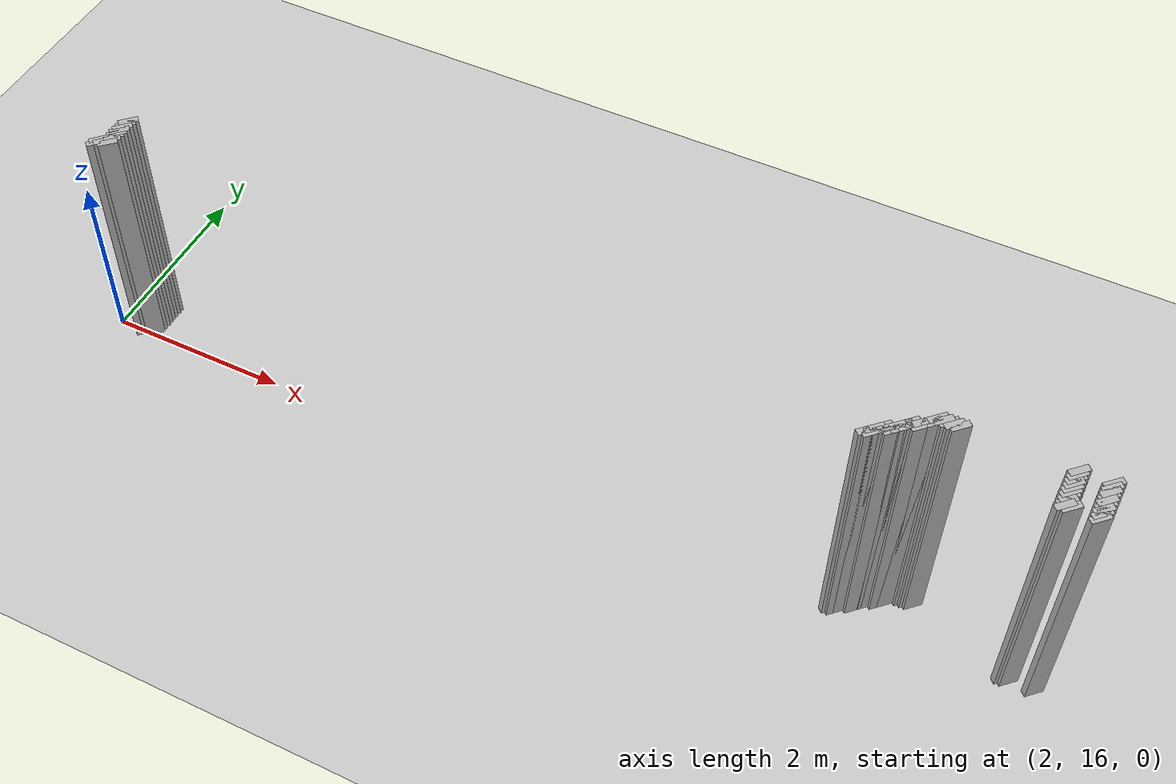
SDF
<sdf version="1.5">
 <world name="default">
  <include><uri>model://ground_plane</uri></include>
  <include><uri>model://sun</uri></include>
  <model name="grey_wall_319">
   <static>1</static>
   <link name="link">
    <pose>10.850000000000001 16.45  1.4 0 0 -0.7853981633974128</pose>
    <collision name="collision">
     <geometry><box><size>0.07071067811865325 .2  2.8</size></box></geometry>
    </collision>
    <visual name="visual">
     <cast_shadows>0</cast_shadows>
     <geometry><box><size>0.07071067811865325 .2  2.8</size></box></geometry>
    </visual>
   </link>
  </model>
  <model name="grey_wall_320">
   <static>1</static>
   <link name="link">
    <pose>10.9 16.45  1.4 0 0 -0.7853981633974128</pose>
    <collision name="collision">
     <geometry><box><size>0.07071067811865325 .2  2.8</size></box></geometry>
    </collision>
    <visual name="visual">
     <cast_shadows>0</cast_shadows>
     <geometry><box><size>0.07071067811865325 .2  2.8</size></box></geometry>
    </visual>
   </link>
  </model>
  <model name="grey_wall_321">
   <static>1</static>
   <link name="link">
    <pose>10.950000000000001 16.45  1.4 0 0 -0.7853981633974128</pose>
    <collision name="collision">
     <geometry><box><size>0.07071067811865325 .2  2.8</size></box></geometry>
    </collision>
    <visual name="visual">
     <cast_shadows>0</cast_shadows>
     <geometry><box><size>0.07071067811865325 .2  2.8</size></box></geometry>
    </visual>
   </link>
  </model>
  <model name="grey_wall_322">
   <static>1</static>
   <link name="link">
    <pose>11.0 16.45  1.4 0 0 -0.7853981633974128</pose>
    <collision name="collision">
     <geometry><box><size>0.07071067811865325 .2  2.8</size></box></geometry>
    </collision>
    <visual name="visual">
     <cast_shadows>0</cast_shadows>
     <geometry><box><size>0.07071067811865325 .2  2.8</size></box></geometry>
    </visual>
   </link>
  </model>
  <model name="grey_wall_323">
   <static>1</static>
   <link name="link">
    <pose>11.05 16.45  1.4 0 0 -0.7853981633974128</pose>
    <collision name="collision">
     <geometry><box><size>0.07071067811865325 .2  2.8</size></box></geometry>
    </collision>
    <visual name="visual">
     <cast_shadows>0</cast_shadows>
     <geometry><box><size>0.07071067811865325 .2  2.8</size></box></geometry>
    </visual>
   </link>
  </model>
  <model name="grey_wall_324">
   <static>1</static>
   <link name="link">
    <pose>12.100000000000001 16.45  1.4 0 0 -0.7853981633974128</pose>
    <collision name="collision">
     <geometry><box><size>0.07071067811865325 .2  2.8</size></box></geometry>
    </collision>
    <visual name="visual">
     <cast_shadows>0</cast_shadows>
     <geometry><box><size>0.07071067811865325 .2  2.8</size></box></geometry>
    </visual>
   </link>
  </model>
  <model name="grey_wall_325">
   <static>1</static>
   <link name="link">
    <pose>12.4 16.45  1.4 0 0 -0.7853981633974128</pose>
    <collision name="collision">
     <geometry><box><size>0.07071067811865325 .2  2.8</size></box></geometry>
    </collision>
    <visual name="visual">
     <cast_shadows>0</cast_shadows>
     <geometry><box><size>0.07071067811865325 .2  2.8</size></box></geometry>
    </visual>
   </link>
  </model>
  <model name="grey_wall_326">
   <static>1</static>
   <link name="link">
    <pose>2.4000000000000004 16.400000000000002  1.4 0 0 -0.7853981633974216</pose>
    <collision name="collision">
     <geometry><box><size>0.07071067811865261 .2  2.8</size></box></geometry>
    </collision>
    <visual name="visual">
     <cast_shadows>0</cast_shadows>
     <geometry><box><size>0.07071067811865261 .2  2.8</size></box></geometry>
    </visual>
   </link>
  </model>
  <model name="grey_wall_327">
   <static>1</static>
   <link name="link">
    <pose>10.8 16.400000000000002  1.4 0 0 -0.7853981633974128</pose>
    <collision name="collision">
     <geometry><box><size>0.07071067811865325 .2  2.8</size></box></geometry>
    </collision>
    <visual name="visual">
     <cast_shadows>0</cast_shadows>
     <geometry><box><size>0.07071067811865325 .2  2.8</size></box></geometry>
    </visual>
   </link>
  </model>
  <model name="grey_wall_328">
   <static>1</static>
   <link name="link">
    <pose>10.850000000000001 16.400000000000002  1.4 0 0 -0.7853981633974128</pose>
    <collision name="collision">
     <geometry><box><size>0.07071067811865325 .2  2.8</size></box></geometry>
    </collision>
    <visual name="visual">
     <cast_shadows>0</cast_shadows>
     <geometry><box><size>0.07071067811865325 .2  2.8</size></box></geometry>
    </visual>
   </link>
  </model>
  <model name="grey_wall_329">
   <static>1</static>
   <link name="link">
    <pose>12.100000000000001 16.400000000000002  1.4 0 0 -0.7853981633974128</pose>
    <collision name="collision">
     <geometry><box><size>0.07071067811865325 .2  2.8</size></box></geometry>
    </collision>
    <visual name="visual">
     <cast_shadows>0</cast_shadows>
     <geometry><box><size>0.07071067811865325 .2  2.8</size></box></geometry>
    </visual>
   </link>
  </model>
  <model name="grey_wall_330">
   <static>1</static>
   <link name="link">
    <pose>12.4 16.400000000000002  1.4 0 0 -0.7853981633974128</pose>
    <collision name="collision">
     <geometry><box><size>0.07071067811865325 .2  2.8</size></box></geometry>
    </collision>
    <visual name="visual">
     <cast_shadows>0</cast_shadows>
     <geometry><box><size>0.07071067811865325 .2  2.8</size></box></geometry>
    </visual>
   </link>
  </model>
  <model name="grey_wall_331">
   <static>1</static>
   <link name="link">
    <pose>2.4000000000000004 16.35  1.4 0 0 -0.7853981633974216</pose>
    <collision name="collision">
     <geometry><box><size>0.07071067811865261 .2  2.8</size></box></geometry>
    </collision>
    <visual name="visual">
     <cast_shadows>0</cast_shadows>
     <geometry><box><size>0.07071067811865261 .2  2.8</size></box></geometry>
    </visual>
   </link>
  </model>
  <model name="grey_wall_332">
   <static>1</static>
   <link name="link">
    <pose>10.75 16.35  1.4 0 0 -0.7853981633974128</pose>
    <collision name="collision">
     <geometry><box><size>0.07071067811865325 .2  2.8</size></box></geometry>
    </collision>
    <visual name="visual">
     <cast_shadows>0</cast_shadows>
     <geometry><box><size>0.07071067811865325 .2  2.8</size></box></geometry>
    </visual>
   </link>
  </model>
  <model name="grey_wall_333">
   <static>1</static>
   <link name="link">
    <pose>10.8 16.35  1.4 0 0 -0.7853981633974128</pose>
    <collision name="collision">
     <geometry><box><size>0.07071067811865325 .2  2.8</size></box></geometry>
    </collision>
    <visual name="visual">
     <cast_shadows>0</cast_shadows>
     <geometry><box><size>0.07071067811865325 .2  2.8</size></box></geometry>
    </visual>
   </link>
  </model>
  <model name="grey_wall_334">
   <static>1</static>
   <link name="link">
    <pose>12.100000000000001 16.35  1.4 0 0 -0.7853981633974128</pose>
    <collision name="collision">
     <geometry><box><size>0.07071067811865325 .2  2.8</size></box></geometry>
    </collision>
    <visual name="visual">
     <cast_shadows>0</cast_shadows>
     <geometry><box><size>0.07071067811865325 .2  2.8</size></box></geometry>
    </visual>
   </link>
  </model>
  <model name="grey_wall_335">
   <static>1</static>
   <link name="link">
    <pose>12.4 16.35  1.4 0 0 -0.7853981633974128</pose>
    <collision name="collision">
     <geometry><box><size>0.07071067811865325 .2  2.8</size></box></geometry>
    </collision>
    <visual name="visual">
     <cast_shadows>0</cast_shadows>
     <geometry><box><size>0.07071067811865325 .2  2.8</size></box></geometry>
    </visual>
   </link>
  </model>
  <model name="grey_wall_336">
   <static>1</static>
   <link name="link">
    <pose>2.4000000000000004 16.3  1.4 0 0 -0.7853981633974216</pose>
    <collision name="collision">
     <geometry><box><size>0.07071067811865261 .2  2.8</size></box></geometry>
    </collision>
    <visual name="visual">
     <cast_shadows>0</cast_shadows>
     <geometry><box><size>0.07071067811865261 .2  2.8</size></box></geometry>
    </visual>
   </link>
  </model>
  <model name="grey_wall_337">
   <static>1</static>
   <link name="link">
    <pose>10.65 16.3  1.4 0 0 -0.7853981633974128</pose>
    <collision name="collision">
     <geometry><box><size>0.07071067811865325 .2  2.8</size></box></geometry>
    </collision>
    <visual name="visual">
     <cast_shadows>0</cast_shadows>
     <geometry><box><size>0.07071067811865325 .2  2.8</size></box></geometry>
    </visual>
   </link>
  </model>
  <model name="grey_wall_338">
   <static>1</static>
   <link name="link">
    <pose>10.700000000000001 16.3  1.4 0 0 -0.7853981633974128</pose>
    <collision name="collision">
     <geometry><box><size>0.07071067811865325 .2  2.8</size></box></geometry>
    </collision>
    <visual name="visual">
     <cast_shadows>0</cast_shadows>
     <geometry><box><size>0.07071067811865325 .2  2.8</size></box></geometry>
    </visual>
   </link>
  </model>
  <model name="grey_wall_339">
   <static>1</static>
   <link name="link">
    <pose>10.75 16.3  1.4 0 0 -0.7853981633974128</pose>
    <collision name="collision">
     <geometry><box><size>0.07071067811865325 .2  2.8</size></box></geometry>
    </collision>
    <visual name="visual">
     <cast_shadows>0</cast_shadows>
     <geometry><box><size>0.07071067811865325 .2  2.8</size></box></geometry>
    </visual>
   </link>
  </model>
  <model name="grey_wall_340">
   <static>1</static>
   <link name="link">
    <pose>12.100000000000001 16.3  1.4 0 0 -0.7853981633974128</pose>
    <collision name="collision">
     <geometry><box><size>0.07071067811865325 .2  2.8</size></box></geometry>
    </collision>
    <visual name="visual">
     <cast_shadows>0</cast_shadows>
     <geometry><box><size>0.07071067811865325 .2  2.8</size></box></geometry>
    </visual>
   </link>
  </model>
  <model name="grey_wall_341">
   <static>1</static>
   <link name="link">
    <pose>12.4 16.3  1.4 0 0 -0.7853981633974128</pose>
    <collision name="collision">
     <geometry><box><size>0.07071067811865325 .2  2.8</size></box></geometry>
    </collision>
    <visual name="visual">
     <cast_shadows>0</cast_shadows>
     <geometry><box><size>0.07071067811865325 .2  2.8</size></box></geometry>
    </visual>
   </link>
  </model>
  <model name="grey_wall_342">
   <static>1</static>
   <link name="link">
    <pose>2.4000000000000004 16.25  1.4 0 0 -0.7853981633974216</pose>
    <collision name="collision">
     <geometry><box><size>0.07071067811865261 .2  2.8</size></box></geometry>
    </collision>
    <visual name="visual">
     <cast_shadows>0</cast_shadows>
     <geometry><box><size>0.07071067811865261 .2  2.8</size></box></geometry>
    </visual>
   </link>
  </model>
  <model name="grey_wall_343">
   <static>1</static>
   <link name="link">
    <pose>10.600000000000001 16.25  1.4 0 0 -0.7853981633974128</pose>
    <collision name="collision">
     <geometry><box><size>0.07071067811865325 .2  2.8</size></box></geometry>
    </collision>
    <visual name="visual">
     <cast_shadows>0</cast_shadows>
     <geometry><box><size>0.07071067811865325 .2  2.8</size></box></geometry>
    </visual>
   </link>
  </model>
  <model name="grey_wall_344">
   <static>1</static>
   <link name="link">
    <pose>10.65 16.25  1.4 0 0 -0.7853981633974128</pose>
    <collision name="collision">
     <geometry><box><size>0.07071067811865325 .2  2.8</size></box></geometry>
    </collision>
    <visual name="visual">
     <cast_shadows>0</cast_shadows>
     <geometry><box><size>0.07071067811865325 .2  2.8</size></box></geometry>
    </visual>
   </link>
  </model>
  <model name="grey_wall_345">
   <static>1</static>
   <link name="link">
    <pose>12.100000000000001 16.25  1.4 0 0 -0.7853981633974128</pose>
    <collision name="collision">
     <geometry><box><size>0.07071067811865325 .2  2.8</size></box></geometry>
    </collision>
    <visual name="visual">
     <cast_shadows>0</cast_shadows>
     <geometry><box><size>0.07071067811865325 .2  2.8</size></box></geometry>
    </visual>
   </link>
  </model>
  <model name="grey_wall_346">
   <static>1</static>
   <link name="link">
    <pose>12.4 16.25  1.4 0 0 -0.7853981633974128</pose>
    <collision name="collision">
     <geometry><box><size>0.07071067811865325 .2  2.8</size></box></geometry>
    </collision>
    <visual name="visual">
     <cast_shadows>0</cast_shadows>
     <geometry><box><size>0.07071067811865325 .2  2.8</size></box></geometry>
    </visual>
   </link>
  </model>
  <model name="grey_wall_347">
   <static>1</static>
   <link name="link">
    <pose>2.4000000000000004 16.2  1.4 0 0 -0.7853981633974216</pose>
    <collision name="collision">
     <geometry><box><size>0.07071067811865261 .2  2.8</size></box></geometry>
    </collision>
    <visual name="visual">
     <cast_shadows>0</cast_shadows>
     <geometry><box><size>0.07071067811865261 .2  2.8</size></box></geometry>
    </visual>
   </link>
  </model>
  <model name="grey_wall_348">
   <static>1</static>
   <link name="link">
    <pose>10.55 16.2  1.4 0 0 -0.7853981633974128</pose>
    <collision name="collision">
     <geometry><box><size>0.07071067811865325 .2  2.8</size></box></geometry>
    </collision>
    <visual name="visual">
     <cast_shadows>0</cast_shadows>
     <geometry><box><size>0.07071067811865325 .2  2.8</size></box></geometry>
    </visual>
   </link>
  </model>
  <model name="grey_wall_349">
   <static>1</static>
   <link name="link">
    <pose>10.600000000000001 16.2  1.4 0 0 -0.7853981633974128</pose>
    <collision name="collision">
     <geometry><box><size>0.07071067811865325 .2  2.8</size></box></geometry>
    </collision>
    <visual name="visual">
     <cast_shadows>0</cast_shadows>
     <geometry><box><size>0.07071067811865325 .2  2.8</size></box></geometry>
    </visual>
   </link>
  </model>
  <model name="grey_wall_350">
   <static>1</static>
   <link name="link">
    <pose>12.100000000000001 16.2  1.4 0 0 -0.7853981633974128</pose>
    <collision name="collision">
     <geometry><box><size>0.07071067811865325 .2  2.8</size></box></geometry>
    </collision>
    <visual name="visual">
     <cast_shadows>0</cast_shadows>
     <geometry><box><size>0.07071067811865325 .2  2.8</size></box></geometry>
    </visual>
   </link>
  </model>
  <model name="grey_wall_351">
   <static>1</static>
   <link name="link">
    <pose>12.4 16.2  1.4 0 0 -0.7853981633974128</pose>
    <collision name="collision">
     <geometry><box><size>0.07071067811865325 .2  2.8</size></box></geometry>
    </collision>
    <visual name="visual">
     <cast_shadows>0</cast_shadows>
     <geometry><box><size>0.07071067811865325 .2  2.8</size></box></geometry>
    </visual>
   </link>
  </model>
  <model name="grey_wall_352">
   <static>1</static>
   <link name="link">
    <pose>2.4000000000000004 16.150000000000002  1.4 0 0 -0.7853981633974216</pose>
    <collision name="collision">
     <geometry><box><size>0.07071067811865261 .2  2.8</size></box></geometry>
    </collision>
    <visual name="visual">
     <cast_shadows>0</cast_shadows>
     <geometry><box><size>0.07071067811865261 .2  2.8</size></box></geometry>
    </visual>
   </link>
  </model>
  <model name="grey_wall_353">
   <static>1</static>
   <link name="link">
    <pose>10.450000000000001 16.150000000000002  1.4 0 0 -0.7853981633974128</pose>
    <collision name="collision">
     <geometry><box><size>0.07071067811865325 .2  2.8</size></box></geometry>
    </collision>
    <visual name="visual">
     <cast_shadows>0</cast_shadows>
     <geometry><box><size>0.07071067811865325 .2  2.8</size></box></geometry>
    </visual>
   </link>
  </model>
  <model name="grey_wall_354">
   <static>1</static>
   <link name="link">
    <pose>10.5 16.150000000000002  1.4 0 0 -0.7853981633974128</pose>
    <collision name="collision">
     <geometry><box><size>0.07071067811865325 .2  2.8</size></box></geometry>
    </collision>
    <visual name="visual">
     <cast_shadows>0</cast_shadows>
     <geometry><box><size>0.07071067811865325 .2  2.8</size></box></geometry>
    </visual>
   </link>
  </model>
  <model name="grey_wall_355">
   <static>1</static>
   <link name="link">
    <pose>10.55 16.150000000000002  1.4 0 0 -0.7853981633974128</pose>
    <collision name="collision">
     <geometry><box><size>0.07071067811865325 .2  2.8</size></box></geometry>
    </collision>
    <visual name="visual">
     <cast_shadows>0</cast_shadows>
     <geometry><box><size>0.07071067811865325 .2  2.8</size></box></geometry>
    </visual>
   </link>
  </model>
  <model name="grey_wall_356">
   <static>1</static>
   <link name="link">
    <pose>12.100000000000001 16.150000000000002  1.4 0 0 -0.7853981633974128</pose>
    <collision name="collision">
     <geometry><box><size>0.07071067811865325 .2  2.8</size></box></geometry>
    </collision>
    <visual name="visual">
     <cast_shadows>0</cast_shadows>
     <geometry><box><size>0.07071067811865325 .2  2.8</size></box></geometry>
    </visual>
   </link>
  </model>
  <model name="grey_wall_357">
   <static>1</static>
   <link name="link">
    <pose>12.4 16.150000000000002  1.4 0 0 -0.7853981633974128</pose>
    <collision name="collision">
     <geometry><box><size>0.07071067811865325 .2  2.8</size></box></geometry>
    </collision>
    <visual name="visual">
     <cast_shadows>0</cast_shadows>
     <geometry><box><size>0.07071067811865325 .2  2.8</size></box></geometry>
    </visual>
   </link>
  </model>
  <model name="grey_wall_358">
   <static>1</static>
   <link name="link">
    <pose>2.4000000000000004 16.1  1.4 0 0 -0.7853981633974216</pose>
    <collision name="collision">
     <geometry><box><size>0.07071067811865261 .2  2.8</size></box></geometry>
    </collision>
    <visual name="visual">
     <cast_shadows>0</cast_shadows>
     <geometry><box><size>0.07071067811865261 .2  2.8</size></box></geometry>
    </visual>
   </link>
  </model>
  <model name="grey_wall_359">
   <static>1</static>
   <link name="link">
    <pose>10.4 16.1  1.4 0 0 -0.7853981633974128</pose>
    <collision name="collision">
     <geometry><box><size>0.07071067811865325 .2  2.8</size></box></geometry>
    </collision>
    <visual name="visual">
     <cast_shadows>0</cast_shadows>
     <geometry><box><size>0.07071067811865325 .2  2.8</size></box></geometry>
    </visual>
   </link>
  </model>
  <model name="grey_wall_360">
   <static>1</static>
   <link name="link">
    <pose>10.450000000000001 16.1  1.4 0 0 -0.7853981633974128</pose>
    <collision name="collision">
     <geometry><box><size>0.07071067811865325 .2  2.8</size></box></geometry>
    </collision>
    <visual name="visual">
     <cast_shadows>0</cast_shadows>
     <geometry><box><size>0.07071067811865325 .2  2.8</size></box></geometry>
    </visual>
   </link>
  </model>
  <model name="grey_wall_361">
   <static>1</static>
   <link name="link">
    <pose>12.100000000000001 16.1  1.4 0 0 -0.7853981633974128</pose>
    <collision name="collision">
     <geometry><box><size>0.07071067811865325 .2  2.8</size></box></geometry>
    </collision>
    <visual name="visual">
     <cast_shadows>0</cast_shadows>
     <geometry><box><size>0.07071067811865325 .2  2.8</size></box></geometry>
    </visual>
   </link>
  </model>
  <model name="grey_wall_362">
   <static>1</static>
   <link name="link">
    <pose>12.4 16.1  1.4 0 0 -0.7853981633974128</pose>
    <collision name="collision">
     <geometry><box><size>0.07071067811865325 .2  2.8</size></box></geometry>
    </collision>
    <visual name="visual">
     <cast_shadows>0</cast_shadows>
     <geometry><box><size>0.07071067811865325 .2  2.8</size></box></geometry>
    </visual>
   </link>
  </model>
  <model name="grey_wall_363">
   <static>1</static>
   <link name="link">
    <pose>2.3000000000000003 16.05  1.4 0 0 -0.7853981633974216</pose>
    <collision name="collision">
     <geometry><box><size>0.07071067811865261 .2  2.8</size></box></geometry>
    </collision>
    <visual name="visual">
     <cast_shadows>0</cast_shadows>
     <geometry><box><size>0.07071067811865261 .2  2.8</size></box></geometry>
    </visual>
   </link>
  </model>
  <model name="grey_wall_364">
   <static>1</static>
   <link name="link">
    <pose>2.35 16.05  1.4 0 0 -0.7853981633974216</pose>
    <collision name="collision">
     <geometry><box><size>0.07071067811865261 .2  2.8</size></box></geometry>
    </collision>
    <visual name="visual">
     <cast_shadows>0</cast_shadows>
     <geometry><box><size>0.07071067811865261 .2  2.8</size></box></geometry>
    </visual>
   </link>
  </model>
  <model name="grey_wall_365">
   <static>1</static>
   <link name="link">
    <pose>2.4000000000000004 16.05  1.4 0 0 -0.7853981633974216</pose>
    <collision name="collision">
     <geometry><box><size>0.07071067811865261 .2  2.8</size></box></geometry>
    </collision>
    <visual name="visual">
     <cast_shadows>0</cast_shadows>
     <geometry><box><size>0.07071067811865261 .2  2.8</size></box></geometry>
    </visual>
   </link>
  </model>
  <model name="grey_wall_366">
   <static>1</static>
   <link name="link">
    <pose>10.350000000000001 16.05  1.4 0 0 -0.7853981633974128</pose>
    <collision name="collision">
     <geometry><box><size>0.07071067811865325 .2  2.8</size></box></geometry>
    </collision>
    <visual name="visual">
     <cast_shadows>0</cast_shadows>
     <geometry><box><size>0.07071067811865325 .2  2.8</size></box></geometry>
    </visual>
   </link>
  </model>
  <model name="grey_wall_367">
   <static>1</static>
   <link name="link">
    <pose>10.4 16.05  1.4 0 0 -0.7853981633974128</pose>
    <collision name="collision">
     <geometry><box><size>0.07071067811865325 .2  2.8</size></box></geometry>
    </collision>
    <visual name="visual">
     <cast_shadows>0</cast_shadows>
     <geometry><box><size>0.07071067811865325 .2  2.8</size></box></geometry>
    </visual>
   </link>
  </model>
  <model name="grey_wall_368">
   <static>1</static>
   <link name="link">
    <pose>12.100000000000001 16.05  1.4 0 0 -0.7853981633974128</pose>
    <collision name="collision">
     <geometry><box><size>0.07071067811865325 .2  2.8</size></box></geometry>
    </collision>
    <visual name="visual">
     <cast_shadows>0</cast_shadows>
     <geometry><box><size>0.07071067811865325 .2  2.8</size></box></geometry>
    </visual>
   </link>
  </model>
  <model name="grey_wall_369">
   <static>1</static>
   <link name="link">
    <pose>12.15 16.05  1.4 0 0 -0.7853981633974128</pose>
    <collision name="collision">
     <geometry><box><size>0.07071067811865325 .2  2.8</size></box></geometry>
    </collision>
    <visual name="visual">
     <cast_shadows>0</cast_shadows>
     <geometry><box><size>0.07071067811865325 .2  2.8</size></box></geometry>
    </visual>
   </link>
  </model>
  <model name="grey_wall_370">
   <static>1</static>
   <link name="link">
    <pose>12.4 16.05  1.4 0 0 -0.7853981633974128</pose>
    <collision name="collision">
     <geometry><box><size>0.07071067811865325 .2  2.8</size></box></geometry>
    </collision>
    <visual name="visual">
     <cast_shadows>0</cast_shadows>
     <geometry><box><size>0.07071067811865325 .2  2.8</size></box></geometry>
    </visual>
   </link>
  </model>
  <model name="grey_wall_371">
   <static>1</static>
   <link name="link">
    <pose>2.3000000000000003 16.0  1.4 0 0 -0.7853981633974394</pose>
    <collision name="collision">
     <geometry><box><size>0.07071067811865388 .2  2.8</size></box></geometry>
    </collision>
    <visual name="visual">
     <cast_shadows>0</cast_shadows>
     <geometry><box><size>0.07071067811865388 .2  2.8</size></box></geometry>
    </visual>
   </link>
  </model>
 </world>
</sdf>
